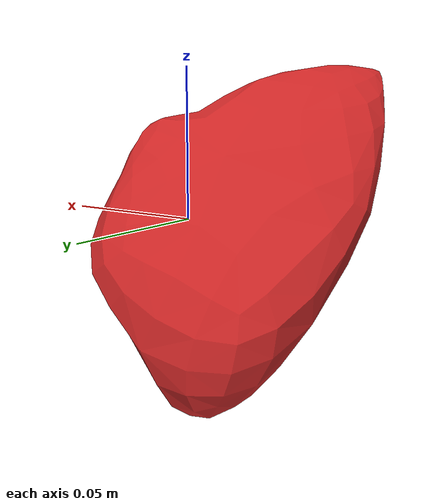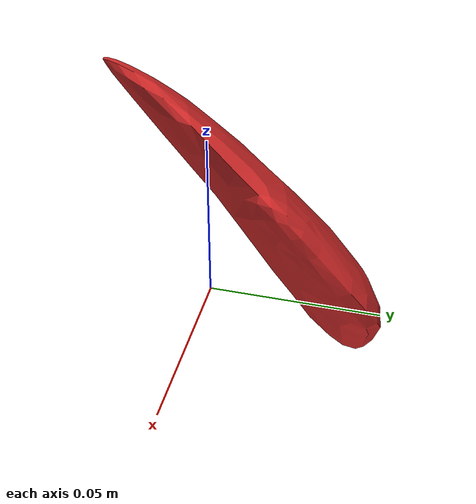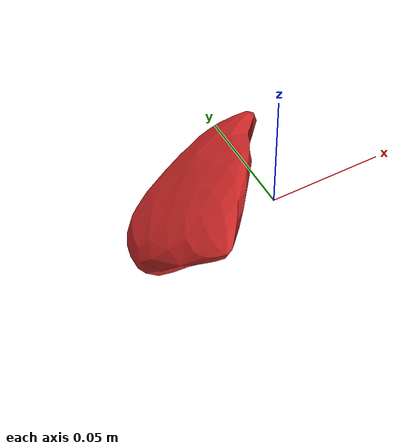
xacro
<?xml version="1.0"?>
<robot xmlns:xacro="http://www.ros.org/wiki/xacro" name="stone3">

    <link name="base_link">
        <visual>
            <geometry>
                <mesh filename="package://rover_meshes/stones/stone3.stl" scale=".05 .05 .05"/>
            </geometry>
        </visual>

        <collision>
            <geometry>
                <mesh filename="package://rover_meshes/stones/stone3.stl" scale=".05 .05 .05"/>
            </geometry>
        </collision>

        <inertial>
            <mass value=".1"/>
            <inertia ixx=".0003" ixy="0.000" ixz="0.000" iyy=".0003" iyz="0.000" izz=".0003"/>
        </inertial>
    </link>

    <gazebo reference="base_link">
        <mu1> 1 </mu1>
        <mu2> 1 </mu2>
        <material> Gazebo/Red </material>
        <selfCollide> False </selfCollide>
    </gazebo>

</robot>
